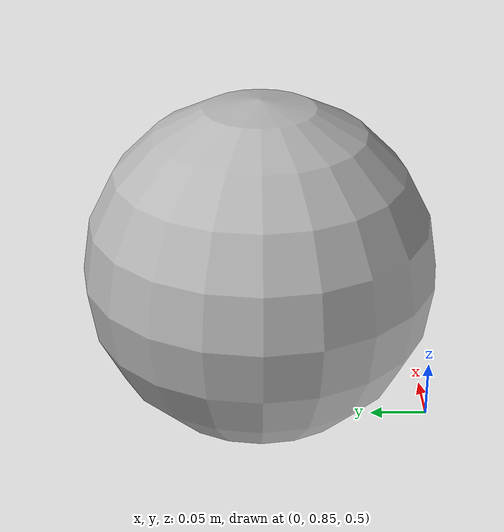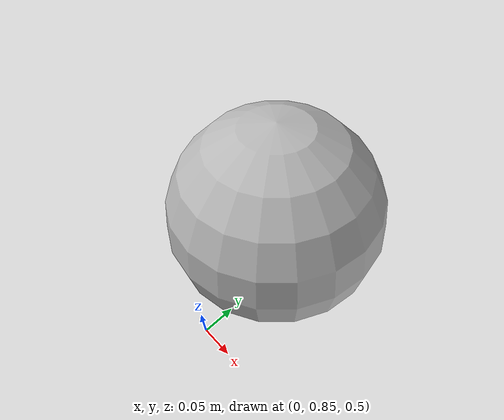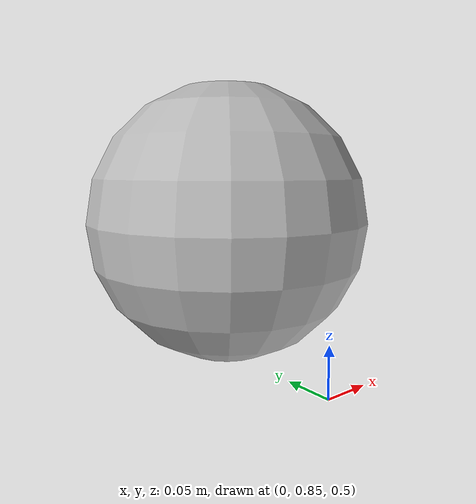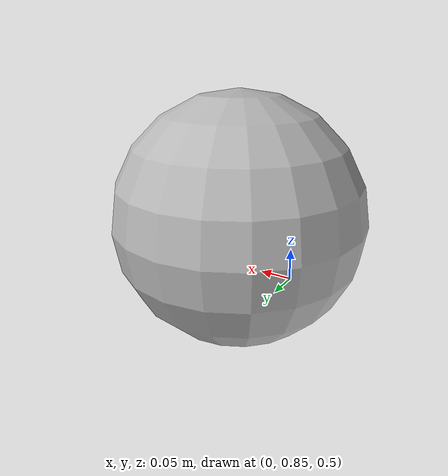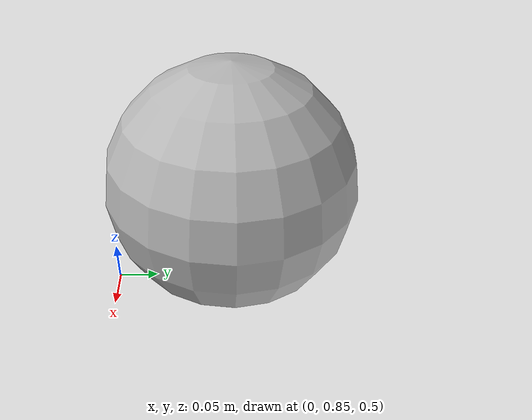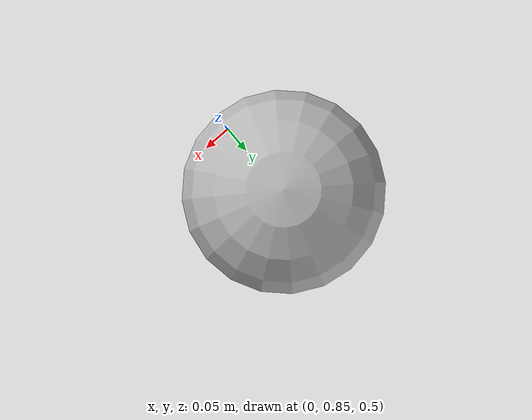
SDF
<?xml version='1.0'?>
<sdf version='1.6'>
  <model name='ball'>
    <pose>0 1 0.65 0 0 0</pose>
    <link name='body'>
      <pose>0 0 0 0 0 0</pose>
      <inertial>
        <mass>0.1</mass>
        <inertia>
          <ixx>0.1</ixx>
          <ixy>0</ixy>
          <ixz>0</ixz>
          <iyy>0.1</iyy>
          <iyz>0</iyz>
          <izz>0.1</izz>
        </inertia>
      </inertial>
      <visual name='visual'>
        <geometry>
          <sphere>
            <radius>0.15</radius>
          </sphere>
        </geometry>
        <material>
          <script>
            <uri>model://labo1/materials/test_texture.material</uri>
            <name>PlasticTexture</name>
          </script>
        </material>
      </visual>
      <collision name='collision'>
        <geometry>
          <sphere>
            <radius>0.15</radius>
          </sphere>
        </geometry>
        <surface>
          <contact>
            <ode>
              <kp>100000</kp>
              <kd>100</kd>
            </ode>
          </contact>
        </surface>
      </collision>
    </link>
  </model>

</sdf>
